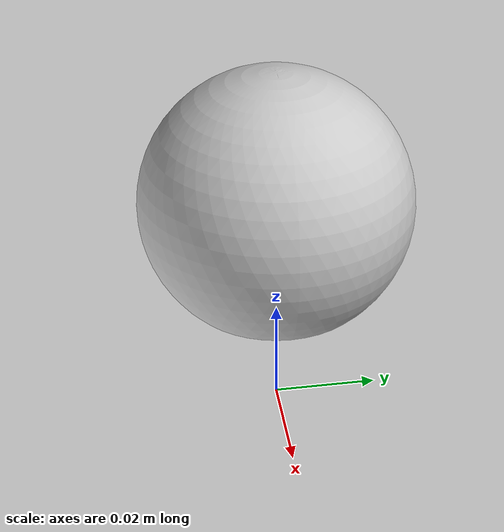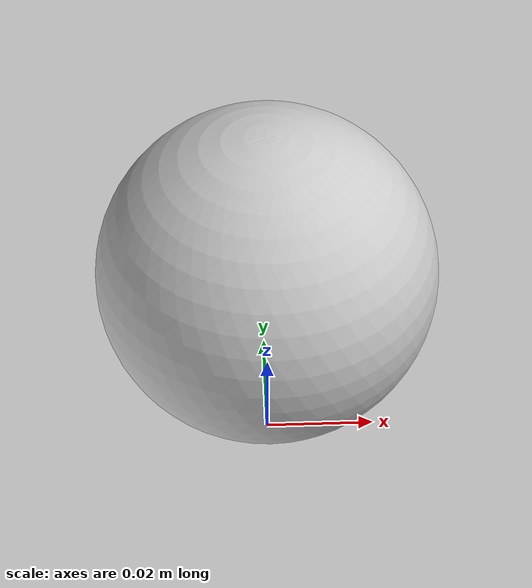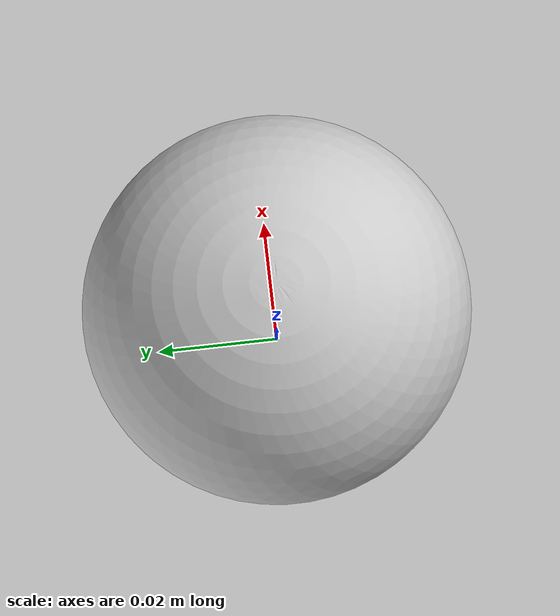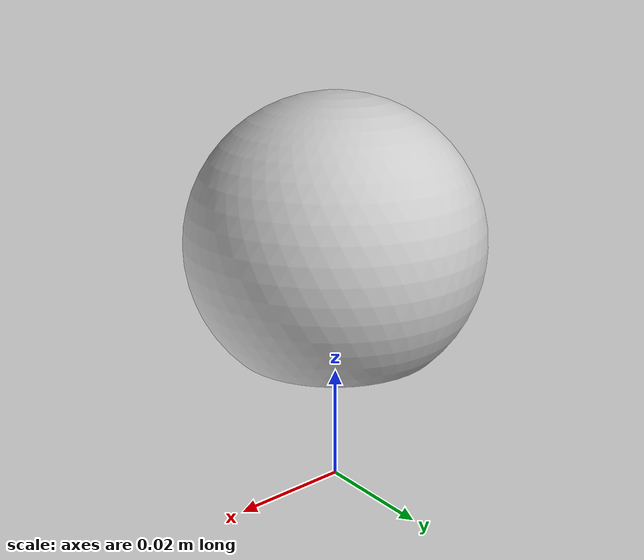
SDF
<?xml version="1.0"?>
<sdf version="1.6">
  <model name="sphere">
      <static>false</static>
      <link name="body">
        <pose>0 0 0.025 0 0 0</pose>

        <inertial>
          <mass>0.05</mass>
          <pose>0.025 0.025 0.025 0 0 0</pose>
          <inertia>
            <ixx>0.0005</ixx>
            <iyy>0.0005</iyy>
            <izz>0.0005</izz>
          </inertia>
      </inertial>

        <visual name="vis">
          <geometry>
            <mesh>
         	<uri>model://object/sphere.dae</uri>
          </mesh>
          </geometry>
        </visual>

        <collision name="col">
          <geometry>
	    <box>
	      <size>0.05 0.05 0.05</size>
	    </box>
          </geometry>
        </collision>
      </link>
  </model>
</sdf>
